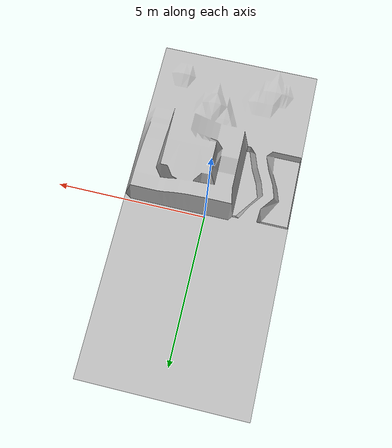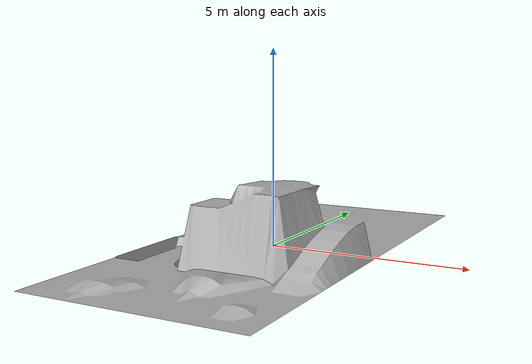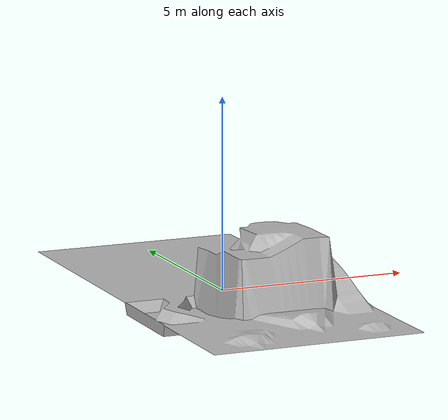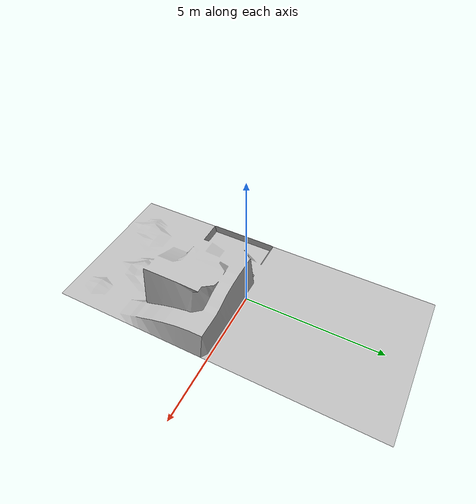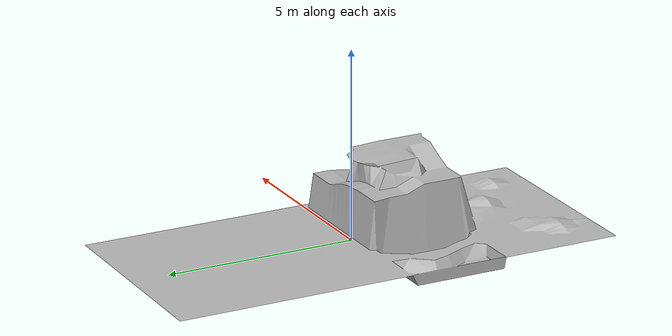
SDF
<?xml version="1.0"?>
<sdf version="1.8">
    <model name="terrain">
        <static>true</static>
        <link name="terrain_link">
            <collision name="collision">
                <geometry>
                    <mesh>
                        <uri>assets/Terrain_2023_v2.dae</uri>
                        <scale>12.0 12.0 12.0</scale>
                    </mesh>
                </geometry>
                <surface>
                    <friction>
                        <ode>
                            <mu>100</mu>
                            <mu2>100</mu2>
                        </ode>
                    </friction>
                </surface>
            </collision>

            <visual name="visual">
                <geometry>
                    <mesh>
                        <uri>assets/Terrain_2023_v2.dae</uri>
                        <scale>12.0 12.0 12.0</scale>
                    </mesh>
                </geometry>
            </visual>
        </link>
    </model>
</sdf>
